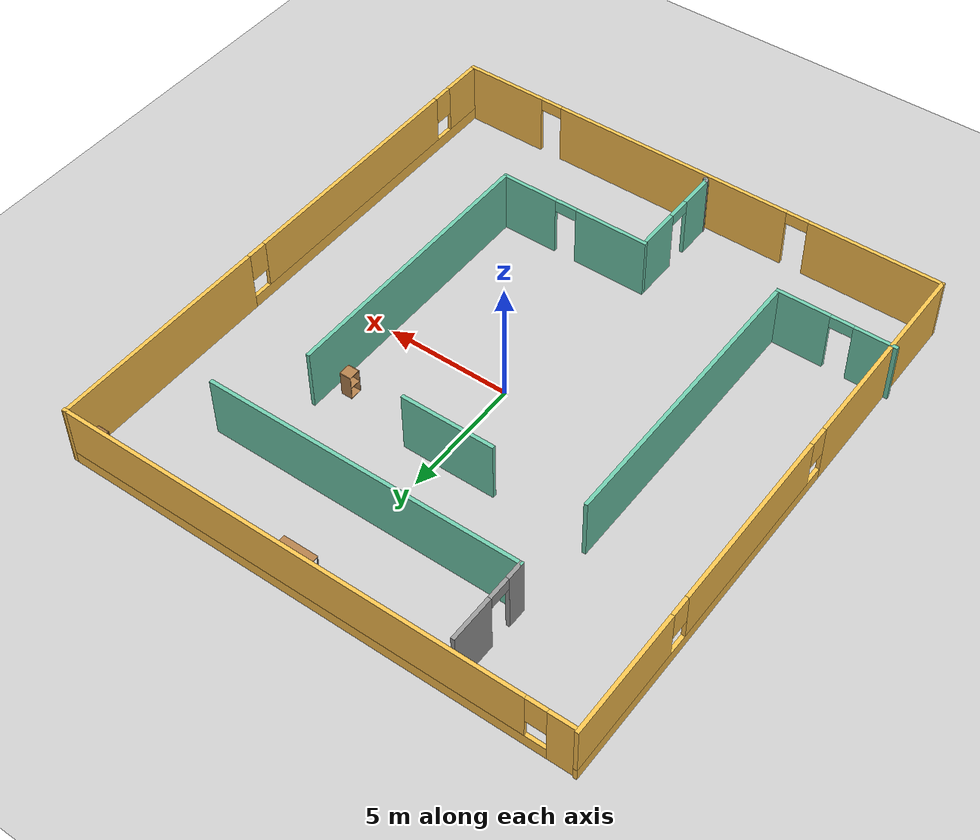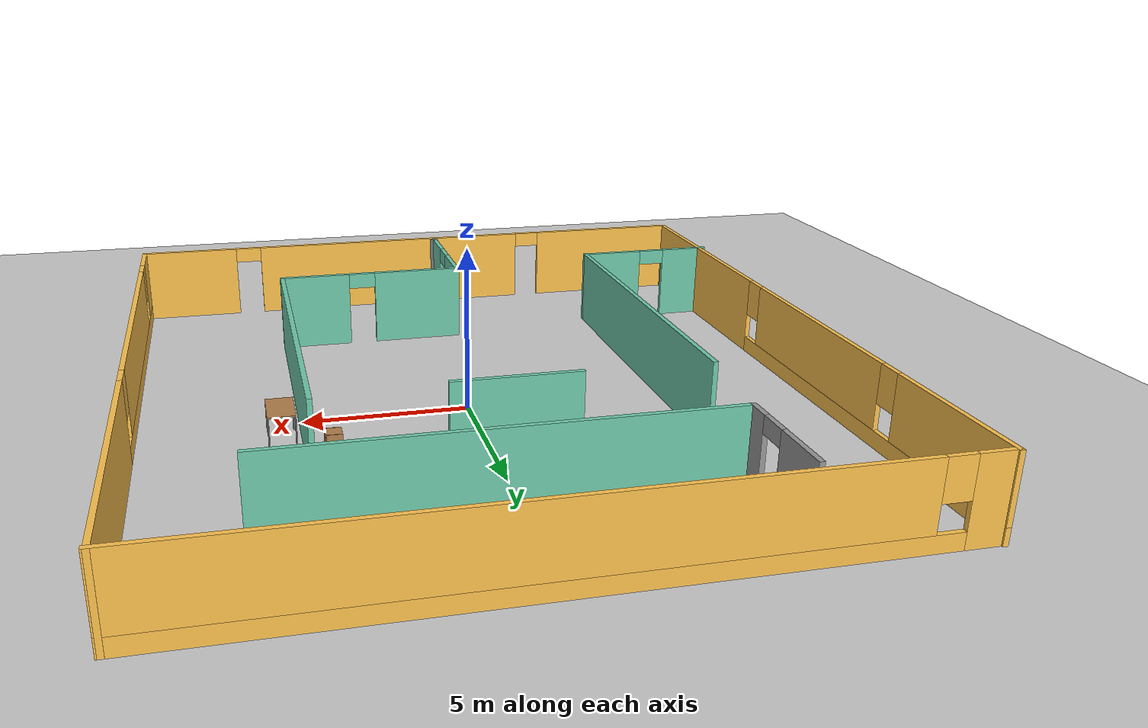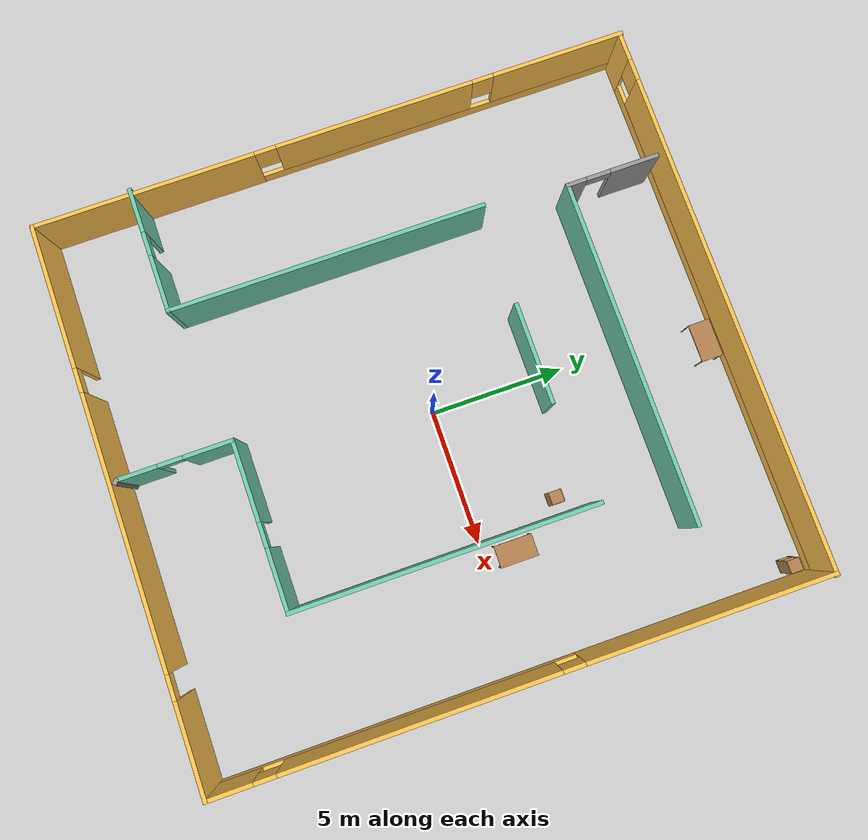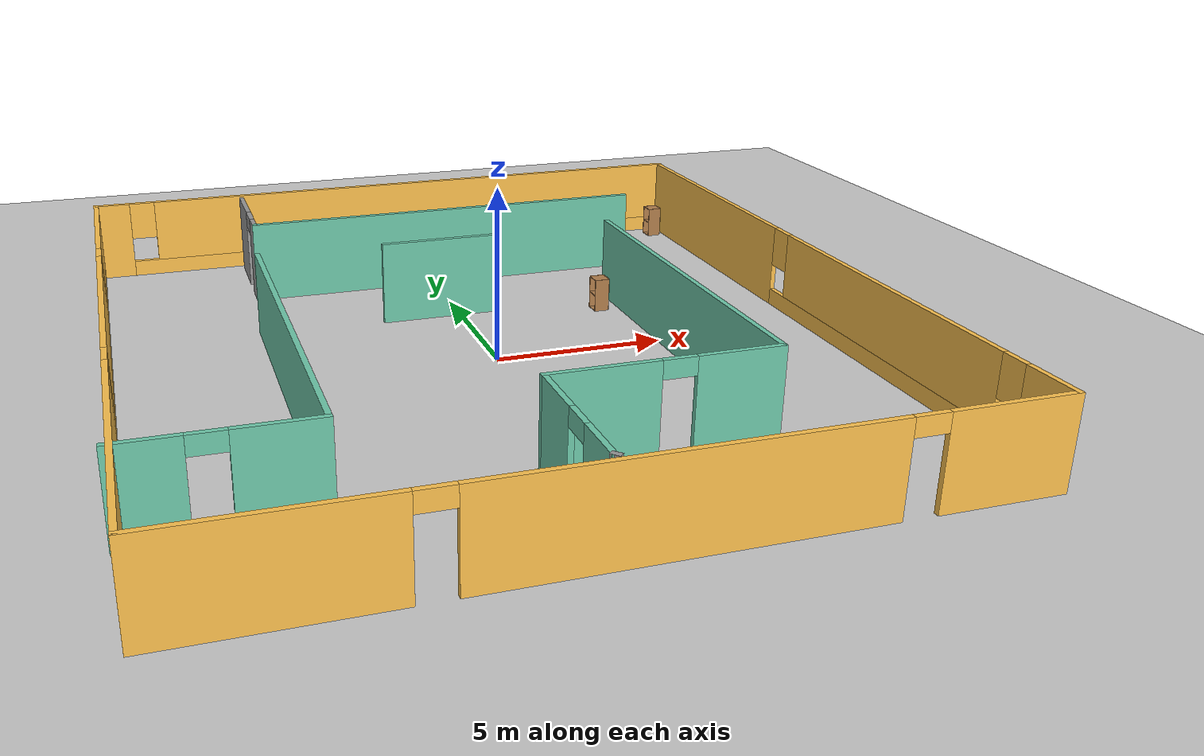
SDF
<sdf version="1.6">
 <world name="default">
  <model name="ground_plane">
   <static>1</static>
   <link name="link">
    <collision name="collision">
     <geometry><plane><normal>0 0 1</normal><size>100 100</size></plane></geometry>
     <surface><friction><ode><mu>100</mu><mu2>50</mu2></ode></friction></surface>
    </collision>
    <visual name="visual">
     <cast_shadows>0</cast_shadows>
     <geometry><plane><normal>0 0 1</normal><size>100 100</size></plane></geometry>
     <material>
      <script><uri>file://media/materials/scripts/gazebo.material</uri><name>Gazebo/Grey</name></script>
     </material>
    </visual>
   </link>
  </model>
  <model name="office_pnd">
   <pose>-0.445996 -0.179176 0 0 -0 0</pose>
   <link name="Wall_16">
    <pose>0.097541 11.0012 0 0 -0 0</pose>
    <visual name="Wall_16_Visual_0">
     <pose>-9.70034 0 1.25 0 -0 0</pose>
     <geometry><box><size>1.09931 0.15 2.5</size></box></geometry>
     <material>
      <script><uri>file://media/materials/scripts/gazebo.material</uri><name>Gazebo/Grey</name></script>
      <ambient>1 0.764706 0.305882 1</ambient>
     </material>
    </visual>
    <collision name="Wall_16_Collision_0">
     <geometry><box><size>1.09931 0.15 2.5</size></box></geometry>
     <pose>-9.70034 0 1.25 0 -0 0</pose>
    </collision>
    <visual name="Wall_16_Visual_1">
     <pose>0.549656 0 0.25 0 -0 0</pose>
     <geometry><box><size>19.4007 0.15 0.5</size></box></geometry>
     <material>
      <script><uri>file://media/materials/scripts/gazebo.material</uri><name>Gazebo/Grey</name></script>
      <ambient>1 0.764706 0.305882 1</ambient>
     </material>
    </visual>
    <collision name="Wall_16_Collision_1">
     <geometry><box><size>19.4007 0.15 0.5</size></box></geometry>
     <pose>0.549656 0 0.25 0 -0 0</pose>
    </collision>
    <visual name="Wall_16_Visual_2">
     <pose>0.949656 0 1.5 0 -0 0</pose>
     <geometry><box><size>18.6007 0.15 2</size></box></geometry>
     <material>
      <script><uri>file://media/materials/scripts/gazebo.material</uri><name>Gazebo/Grey</name></script>
      <ambient>1 0.764706 0.305882 1</ambient>
     </material>
    </visual>
    <collision name="Wall_16_Collision_2">
     <geometry><box><size>18.6007 0.15 2</size></box></geometry>
     <pose>0.949656 0 1.5 0 -0 0</pose>
    </collision>
    <visual name="Wall_16_Visual_3">
     <pose>-8.75069 0 1.9 0 -0 0</pose>
     <geometry><box><size>0.8 0.15 1.2</size></box></geometry>
     <material>
      <script><uri>file://media/materials/scripts/gazebo.material</uri><name>Gazebo/Grey</name></script>
      <ambient>1 0.764706 0.305882 1</ambient>
     </material>
    </visual>
    <collision name="Wall_16_Collision_3">
     <geometry><box><size>0.8 0.15 1.2</size></box></geometry>
     <pose>-8.75069 0 1.9 0 -0 0</pose>
    </collision>
   </link>
   <link name="Wall_17">
    <pose>10.2323 -0.024395 0 0 0 -1.5708</pose>
    <visual name="Wall_17_Visual_0">
     <pose>-6.60362 0 1.25 0 -0 0</pose>
     <geometry><box><size>8.99404 0.15 2.5</size></box></geometry>
     <material>
      <script><uri>file://media/materials/scripts/gazebo.material</uri><name>Gazebo/Grey</name></script>
      <ambient>1 0.764706 0.305882 1</ambient>
     </material>
    </visual>
    <collision name="Wall_17_Collision_0">
     <geometry><box><size>8.99404 0.15 2.5</size></box></geometry>
     <pose>-6.60362 0 1.25 0 -0 0</pose>
    </collision>
    <visual name="Wall_17_Visual_1">
     <pose>4.49702 0 0.25 0 -0 0</pose>
     <geometry><box><size>13.2072 0.15 0.5</size></box></geometry>
     <material>
      <script><uri>file://media/materials/scripts/gazebo.material</uri><name>Gazebo/Grey</name></script>
      <ambient>1 0.764706 0.305882 1</ambient>
     </material>
    </visual>
    <collision name="Wall_17_Collision_1">
     <geometry><box><size>13.2072 0.15 0.5</size></box></geometry>
     <pose>4.49702 0 0.25 0 -0 0</pose>
    </collision>
    <visual name="Wall_17_Visual_2">
     <pose>3.64361 0 1.5 0 -0 0</pose>
     <geometry><box><size>9.90042 0.15 2</size></box></geometry>
     <material>
      <script><uri>file://media/materials/scripts/gazebo.material</uri><name>Gazebo/Grey</name></script>
      <ambient>1 0.764706 0.305882 1</ambient>
     </material>
    </visual>
    <collision name="Wall_17_Collision_2">
     <geometry><box><size>9.90042 0.15 2</size></box></geometry>
     <pose>3.64361 0 1.5 0 -0 0</pose>
    </collision>
    <visual name="Wall_17_Visual_3">
     <pose>10.2472 0 1.5 0 -0 0</pose>
     <geometry><box><size>1.70682 0.15 2</size></box></geometry>
     <material>
      <script><uri>file://media/materials/scripts/gazebo.material</uri><name>Gazebo/Grey</name></script>
      <ambient>1 0.764706 0.305882 1</ambient>
     </material>
    </visual>
    <collision name="Wall_17_Collision_3">
     <geometry><box><size>1.70682 0.15 2</size></box></geometry>
     <pose>10.2472 0 1.5 0 -0 0</pose>
    </collision>
    <visual name="Wall_17_Visual_4">
     <pose>-1.7066 0 1.9 0 -0 0</pose>
     <geometry><box><size>0.8 0.15 1.2</size></box></geometry>
     <material>
      <script><uri>file://media/materials/scripts/gazebo.material</uri><name>Gazebo/Grey</name></script>
      <ambient>1 0.764706 0.305882 1</ambient>
     </material>
    </visual>
    <collision name="Wall_17_Collision_4">
     <geometry><box><size>0.8 0.15 1.2</size></box></geometry>
     <pose>-1.7066 0 1.9 0 -0 0</pose>
    </collision>
    <visual name="Wall_17_Visual_5">
     <pose>8.99382 0 1.9 0 -0 0</pose>
     <geometry><box><size>0.8 0.15 1.2</size></box></geometry>
     <material>
      <script><uri>file://media/materials/scripts/gazebo.material</uri><name>Gazebo/Grey</name></script>
      <ambient>1 0.764706 0.305882 1</ambient>
     </material>
    </visual>
    <collision name="Wall_17_Collision_5">
     <geometry><box><size>0.8 0.15 1.2</size></box></geometry>
     <pose>8.99382 0 1.9 0 -0 0</pose>
    </collision>
   </link>
   <link name="Wall_18">
    <pose>0.057314 -11.05 0 0 -0 3.14159</pose>
    <visual name="Wall_18_Visual_0">
     <pose>-8.55747 0 1.25 0 -0 0</pose>
     <geometry><box><size>3.38505 0.15 2.5</size></box></geometry>
     <material>
      <script><uri>file://media/materials/scripts/gazebo.material</uri><name>Gazebo/Grey</name></script>
      <ambient>1 0.764706 0.305882 1</ambient>
     </material>
    </visual>
    <collision name="Wall_18_Collision_0">
     <geometry><box><size>3.38505 0.15 2.5</size></box></geometry>
     <pose>-8.55747 0 1.25 0 -0 0</pose>
    </collision>
    <visual name="Wall_18_Visual_1">
     <pose>-1.00439 0 1.25 0 -0 0</pose>
     <geometry><box><size>9.9211 0.15 2.5</size></box></geometry>
     <material>
      <script><uri>file://media/materials/scripts/gazebo.material</uri><name>Gazebo/Grey</name></script>
      <ambient>1 0.764706 0.305882 1</ambient>
     </material>
    </visual>
    <collision name="Wall_18_Collision_1">
     <geometry><box><size>9.9211 0.15 2.5</size></box></geometry>
     <pose>-1.00439 0 1.25 0 -0 0</pose>
    </collision>
    <visual name="Wall_18_Visual_2">
     <pose>7.55308 0 1.25 0 -0 0</pose>
     <geometry><box><size>5.39384 0.15 2.5</size></box></geometry>
     <material>
      <script><uri>file://media/materials/scripts/gazebo.material</uri><name>Gazebo/Grey</name></script>
      <ambient>1 0.764706 0.305882 1</ambient>
     </material>
    </visual>
    <collision name="Wall_18_Collision_2">
     <geometry><box><size>5.39384 0.15 2.5</size></box></geometry>
     <pose>7.55308 0 1.25 0 -0 0</pose>
    </collision>
    <visual name="Wall_18_Visual_3">
     <pose>-6.41495 0 2.25 0 -0 0</pose>
     <geometry><box><size>0.9 0.15 0.5</size></box></geometry>
     <material>
      <script><uri>file://media/materials/scripts/gazebo.material</uri><name>Gazebo/Grey</name></script>
      <ambient>1 0.764706 0.305882 1</ambient>
     </material>
    </visual>
    <collision name="Wall_18_Collision_3">
     <geometry><box><size>0.9 0.15 0.5</size></box></geometry>
     <pose>-6.41495 0 2.25 0 -0 0</pose>
    </collision>
    <visual name="Wall_18_Visual_4">
     <pose>4.40616 0 2.25 0 -0 0</pose>
     <geometry><box><size>0.9 0.15 0.5</size></box></geometry>
     <material>
      <script><uri>file://media/materials/scripts/gazebo.material</uri><name>Gazebo/Grey</name></script>
      <ambient>1 0.764706 0.305882 1</ambient>
     </material>
    </visual>
    <collision name="Wall_18_Collision_4">
     <geometry><box><size>0.9 0.15 0.5</size></box></geometry>
     <pose>4.40616 0 2.25 0 -0 0</pose>
    </collision>
   </link>
   <link name="Wall_19">
    <pose>-10.1177 3.7e-05 0 0 -0 1.5708</pose>
    <visual name="Wall_19_Visual_0">
     <pose>-6.99312 0 1.25 0 -0 0</pose>
     <geometry><box><size>8.26377 0.15 2.5</size></box></geometry>
     <material>
      <script><uri>file://media/materials/scripts/gazebo.material</uri><name>Gazebo/Grey</name></script>
      <ambient>1 0.764706 0.305882 1</ambient>
     </material>
    </visual>
    <collision name="Wall_19_Collision_0">
     <geometry><box><size>8.26377 0.15 2.5</size></box></geometry>
     <pose>-6.99312 0 1.25 0 -0 0</pose>
    </collision>
    <visual name="Wall_19_Visual_1">
     <pose>4.13188 0 0.25 0 -0 0</pose>
     <geometry><box><size>13.9862 0.15 0.5</size></box></geometry>
     <material>
      <script><uri>file://media/materials/scripts/gazebo.material</uri><name>Gazebo/Grey</name></script>
      <ambient>1 0.764706 0.305882 1</ambient>
     </material>
    </visual>
    <collision name="Wall_19_Collision_1">
     <geometry><box><size>13.9862 0.15 0.5</size></box></geometry>
     <pose>4.13188 0 0.25 0 -0 0</pose>
    </collision>
    <visual name="Wall_19_Visual_2">
     <pose>1.64194 0 1.5 0 -0 0</pose>
     <geometry><box><size>7.40634 0.15 2</size></box></geometry>
     <material>
      <script><uri>file://media/materials/scripts/gazebo.material</uri><name>Gazebo/Grey</name></script>
      <ambient>1 0.764706 0.305882 1</ambient>
     </material>
    </visual>
    <collision name="Wall_19_Collision_2">
     <geometry><box><size>7.40634 0.15 2</size></box></geometry>
     <pose>1.64194 0 1.5 0 -0 0</pose>
    </collision>
    <visual name="Wall_19_Visual_3">
     <pose>8.63505 0 1.5 0 -0 0</pose>
     <geometry><box><size>4.97989 0.15 2</size></box></geometry>
     <material>
      <script><uri>file://media/materials/scripts/gazebo.material</uri><name>Gazebo/Grey</name></script>
      <ambient>1 0.764706 0.305882 1</ambient>
     </material>
    </visual>
    <collision name="Wall_19_Collision_3">
     <geometry><box><size>4.97989 0.15 2</size></box></geometry>
     <pose>8.63505 0 1.5 0 -0 0</pose>
    </collision>
    <visual name="Wall_19_Visual_4">
     <pose>-2.46123 0 1.9 0 -0 0</pose>
     <geometry><box><size>0.8 0.15 1.2</size></box></geometry>
     <material>
      <script><uri>file://media/materials/scripts/gazebo.material</uri><name>Gazebo/Grey</name></script>
      <ambient>1 0.764706 0.305882 1</ambient>
     </material>
    </visual>
    <collision name="Wall_19_Collision_4">
     <geometry><box><size>0.8 0.15 1.2</size></box></geometry>
     <pose>-2.46123 0 1.9 0 -0 0</pose>
    </collision>
    <visual name="Wall_19_Visual_5">
     <pose>5.74511 0 1.9 0 -0 0</pose>
     <geometry><box><size>0.8 0.15 1.2</size></box></geometry>
     <material>
      <script><uri>file://media/materials/scripts/gazebo.material</uri><name>Gazebo/Grey</name></script>
      <ambient>1 0.764706 0.305882 1</ambient>
     </material>
    </visual>
    <collision name="Wall_19_Collision_5">
     <geometry><box><size>0.8 0.15 1.2</size></box></geometry>
     <pose>5.74511 0 1.9 0 -0 0</pose>
    </collision>
   </link>
   <link name="Wall_21">
    <collision name="Wall_21_Collision">
     <geometry><box><size>11.75 0.15 2.5</size></box></geometry>
     <pose>0 0 1.25 0 -0 0</pose>
    </collision>
    <visual name="Wall_21_Visual">
     <pose>0 0 1.25 0 -0 0</pose>
     <geometry><box><size>11.75 0.15 2.5</size></box></geometry>
     <material>
      <script><uri>file://media/materials/scripts/gazebo.material</uri><name>Gazebo/Grey</name></script>
      <ambient>0.435294 0.796078 0.67451 1</ambient>
     </material>
    </visual>
    <pose>-5.67254 -1.62415 0 0 0 -1.5708</pose>
   </link>
   <link name="Wall_22">
    <pose>-7.97254 -7.42415 0 0 -0 3.14159</pose>
    <visual name="Wall_22_Visual_0">
     <pose>-1.29345 0 1.25 0 -0 0</pose>
     <geometry><box><size>2.16311 0.15 2.5</size></box></geometry>
     <material>
      <script><uri>file://media/materials/scripts/gazebo.material</uri><name>Gazebo/Grey</name></script>
      <ambient>0.435294 0.796078 0.67451 1</ambient>
     </material>
    </visual>
    <collision name="Wall_22_Collision_0">
     <geometry><box><size>2.16311 0.15 2.5</size></box></geometry>
     <pose>-1.29345 0 1.25 0 -0 0</pose>
    </collision>
    <visual name="Wall_22_Visual_1">
     <pose>1.53155 0 1.25 0 -0 0</pose>
     <geometry><box><size>1.68689 0.15 2.5</size></box></geometry>
     <material>
      <script><uri>file://media/materials/scripts/gazebo.material</uri><name>Gazebo/Grey</name></script>
      <ambient>0.435294 0.796078 0.67451 1</ambient>
     </material>
    </visual>
    <collision name="Wall_22_Collision_1">
     <geometry><box><size>1.68689 0.15 2.5</size></box></geometry>
     <pose>1.53155 0 1.25 0 -0 0</pose>
    </collision>
    <visual name="Wall_22_Visual_2">
     <pose>0.238108 0 2.25 0 -0 0</pose>
     <geometry><box><size>0.9 0.15 0.5</size></box></geometry>
     <material>
      <script><uri>file://media/materials/scripts/gazebo.material</uri><name>Gazebo/Grey</name></script>
      <ambient>0.435294 0.796078 0.67451 1</ambient>
     </material>
    </visual>
    <collision name="Wall_22_Collision_2">
     <geometry><box><size>0.9 0.15 0.5</size></box></geometry>
     <pose>0.238108 0 2.25 0 -0 0</pose>
    </collision>
   </link>
   <link name="Wall_24">
    <pose>-5.36664 8.9248 0 0 0 -1.5708</pose>
    <visual name="Wall_24_Visual_0">
     <pose>-0.837668 0 1.25 0 -0 0</pose>
     <geometry><box><size>1.82466 0.15 2.5</size></box></geometry>
     <material>
      <script><uri>file://media/materials/scripts/gazebo.material</uri><name>Gazebo/Grey</name></script>
      <ambient>1 1 1 1</ambient>
     </material>
    </visual>
    <collision name="Wall_24_Collision_0">
     <geometry><box><size>1.82466 0.15 2.5</size></box></geometry>
     <pose>-0.837668 0 1.25 0 -0 0</pose>
    </collision>
    <visual name="Wall_24_Visual_1">
     <pose>1.36233 0 1.25 0 -0 0</pose>
     <geometry><box><size>0.775335 0.15 2.5</size></box></geometry>
     <material>
      <script><uri>file://media/materials/scripts/gazebo.material</uri><name>Gazebo/Grey</name></script>
      <ambient>1 1 1 1</ambient>
     </material>
    </visual>
    <collision name="Wall_24_Collision_1">
     <geometry><box><size>0.775335 0.15 2.5</size></box></geometry>
     <pose>1.36233 0 1.25 0 -0 0</pose>
    </collision>
    <visual name="Wall_24_Visual_2">
     <pose>0.524665 0 2.25 0 -0 0</pose>
     <geometry><box><size>0.9 0.15 0.5</size></box></geometry>
     <material>
      <script><uri>file://media/materials/scripts/gazebo.material</uri><name>Gazebo/Grey</name></script>
      <ambient>1 1 1 1</ambient>
     </material>
    </visual>
    <collision name="Wall_24_Collision_2">
     <geometry><box><size>0.9 0.15 0.5</size></box></geometry>
     <pose>0.524665 0 2.25 0 -0 0</pose>
    </collision>
   </link>
   <link name="Wall_25">
    <collision name="Wall_25_Collision">
     <geometry><box><size>12.75 0.15 2.5</size></box></geometry>
     <pose>0 0 1.25 0 -0 0</pose>
    </collision>
    <visual name="Wall_25_Visual">
     <pose>0 0 1.25 0 -0 0</pose>
     <geometry><box><size>12.75 0.15 2.5</size></box></geometry>
     <material>
      <script><uri>file://media/materials/scripts/gazebo.material</uri><name>Gazebo/Grey</name></script>
      <ambient>0.435294 0.796078 0.67451 1</ambient>
     </material>
    </visual>
    <pose>0.933361 7.2498 0 0 -0 0</pose>
   </link>
   <link name="Wall_28">
    <collision name="Wall_28_Collision">
     <geometry><box><size>11.25 0.15 2.5</size></box></geometry>
     <pose>0 0 1.25 0 -0 0</pose>
    </collision>
    <visual name="Wall_28_Visual">
     <pose>0 0 1.25 0 -0 0</pose>
     <geometry><box><size>11.25 0.15 2.5</size></box></geometry>
     <material>
      <script><uri>file://media/materials/scripts/gazebo.material</uri><name>Gazebo/Grey</name></script>
      <ambient>0.435294 0.796078 0.67451 1</ambient>
     </material>
    </visual>
    <pose>5.4623 -1.12943 0 0 0 -1.5708</pose>
   </link>
   <link name="Wall_29">
    <pose>2.4123 -6.67943 0 0 -0 3.14159</pose>
    <visual name="Wall_29_Visual_0">
     <pose>-1.94692 0 1.25 0 -0 0</pose>
     <geometry><box><size>2.35617 0.15 2.5</size></box></geometry>
     <material>
      <script><uri>file://media/materials/scripts/gazebo.material</uri><name>Gazebo/Grey</name></script>
      <ambient>0.435294 0.796078 0.67451 1</ambient>
     </material>
    </visual>
    <collision name="Wall_29_Collision_0">
     <geometry><box><size>2.35617 0.15 2.5</size></box></geometry>
     <pose>-1.94692 0 1.25 0 -0 0</pose>
    </collision>
    <visual name="Wall_29_Visual_1">
     <pose>1.62808 0 1.25 0 -0 0</pose>
     <geometry><box><size>2.99383 0.15 2.5</size></box></geometry>
     <material>
      <script><uri>file://media/materials/scripts/gazebo.material</uri><name>Gazebo/Grey</name></script>
      <ambient>0.435294 0.796078 0.67451 1</ambient>
     </material>
    </visual>
    <collision name="Wall_29_Collision_1">
     <geometry><box><size>2.99383 0.15 2.5</size></box></geometry>
     <pose>1.62808 0 1.25 0 -0 0</pose>
    </collision>
    <visual name="Wall_29_Visual_2">
     <pose>-0.318833 0 2.25 0 -0 0</pose>
     <geometry><box><size>0.9 0.15 0.5</size></box></geometry>
     <material>
      <script><uri>file://media/materials/scripts/gazebo.material</uri><name>Gazebo/Grey</name></script>
      <ambient>0.435294 0.796078 0.67451 1</ambient>
     </material>
    </visual>
    <collision name="Wall_29_Collision_2">
     <geometry><box><size>0.9 0.15 0.5</size></box></geometry>
     <pose>-0.318833 0 2.25 0 -0 0</pose>
    </collision>
   </link>
   <link name="Wall_30">
    <pose>-0.637698 -8.72943 0 0 0 -1.5708</pose>
    <visual name="Wall_30_Visual_0">
     <pose>-1.20345 0 1.25 0 -0 0</pose>
     <geometry><box><size>1.84311 0.15 2.5</size></box></geometry>
     <material>
      <script><uri>file://media/materials/scripts/gazebo.material</uri><name>Gazebo/Grey</name></script>
      <ambient>0.435294 0.796078 0.67451 1</ambient>
     </material>
    </visual>
    <collision name="Wall_30_Collision_0">
     <geometry><box><size>1.84311 0.15 2.5</size></box></geometry>
     <pose>-1.20345 0 1.25 0 -0 0</pose>
    </collision>
    <visual name="Wall_30_Visual_1">
     <pose>1.37156 0 1.25 0 -0 0</pose>
     <geometry><box><size>1.50689 0.15 2.5</size></box></geometry>
     <material>
      <script><uri>file://media/materials/scripts/gazebo.material</uri><name>Gazebo/Grey</name></script>
      <ambient>0.435294 0.796078 0.67451 1</ambient>
     </material>
    </visual>
    <collision name="Wall_30_Collision_1">
     <geometry><box><size>1.50689 0.15 2.5</size></box></geometry>
     <pose>1.37156 0 1.25 0 -0 0</pose>
    </collision>
    <visual name="Wall_30_Visual_2">
     <pose>0.168111 0 2.25 0 -0 0</pose>
     <geometry><box><size>0.9 0.15 0.5</size></box></geometry>
     <material>
      <script><uri>file://media/materials/scripts/gazebo.material</uri><name>Gazebo/Grey</name></script>
      <ambient>0.435294 0.796078 0.67451 1</ambient>
     </material>
    </visual>
    <collision name="Wall_30_Collision_2">
     <geometry><box><size>0.9 0.15 0.5</size></box></geometry>
     <pose>0.168111 0 2.25 0 -0 0</pose>
    </collision>
   </link>
   <link name="Wall_31">
    <collision name="Wall_31_Collision">
     <geometry><box><size>0.25 0.15 2.5</size></box></geometry>
     <pose>0 0 1.25 0 -0 0</pose>
    </collision>
    <visual name="Wall_31_Visual">
     <pose>0 0 1.25 0 -0 0</pose>
     <geometry><box><size>0.25 0.15 2.5</size></box></geometry>
     <material>
      <script><uri>file://media/materials/scripts/gazebo.material</uri><name>Gazebo/Grey</name></script>
      <ambient>1 1 1 1</ambient>
     </material>
    </visual>
    <pose>-0.602343 -10.8148 0 0 0 -0.785398</pose>
   </link>
   <link name="Wall_40">
    <collision name="Wall_40_Collision">
     <geometry><box><size>3.75 0.15 2.5</size></box></geometry>
     <pose>0 0 1.25 0 -0 0</pose>
    </collision>
    <visual name="Wall_40_Visual">
     <pose>0 0 1.25 0 -0 0</pose>
     <geometry><box><size>3.75 0.15 2.5</size></box></geometry>
     <material>
      <script><uri>file://media/materials/scripts/gazebo.material</uri><name>Gazebo/Grey</name></script>
      <ambient>0.435294 0.796078 0.67451 1</ambient>
     </material>
    </visual>
    <pose>-0.094987 4.0556 0 0 -0 0</pose>
   </link>
   <static>1</static>
  </model>
  <model name="table_clone_4">
   <static>0</static>
   <link name="link">
    <collision name="surface">
     <pose>0 0 1 0 -0 0</pose>
     <geometry><box><size>1.5 0.8 0.03</size></box></geometry>
     <surface><friction><ode><mu>0.6</mu><mu2>0.6</mu2></ode></friction></surface>
    </collision>
    <visual name="visual1">
     <pose>0 0 1 0 -0 0</pose>
     <geometry><box><size>1.4 0.8 0.04</size></box></geometry>
     <material>
      <script><uri>file://media/materials/scripts/gazebo.material</uri><name>Gazebo/Wood</name></script>
     </material>
    </visual>
    <collision name="front_left_leg">
     <pose>0.68 0.38 0.5 0 -0 0</pose>
     <geometry><cylinder><radius>0.02</radius><length>1</length></cylinder></geometry>
    </collision>
    <visual name="front_left_leg">
     <pose>0.68 0.38 0.5 0 -0 0</pose>
     <geometry><cylinder><radius>0.02</radius><length>1</length></cylinder></geometry>
     <material>
      <script><uri>file://media/materials/scripts/gazebo.material</uri><name>Gazebo/Grey</name></script>
     </material>
    </visual>
    <collision name="front_right_leg">
     <pose>0.68 -0.38 0.5 0 -0 0</pose>
     <geometry><cylinder><radius>0.02</radius><length>1</length></cylinder></geometry>
    </collision>
    <visual name="front_right_leg">
     <pose>0.68 -0.38 0.5 0 -0 0</pose>
     <geometry><cylinder><radius>0.02</radius><length>1</length></cylinder></geometry>
     <material>
      <script><uri>file://media/materials/scripts/gazebo.material</uri><name>Gazebo/Grey</name></script>
     </material>
    </visual>
    <collision name="back_right_leg">
     <pose>-0.68 -0.38 0.5 0 -0 0</pose>
     <geometry><cylinder><radius>0.02</radius><length>1</length></cylinder></geometry>
    </collision>
    <visual name="back_right_leg">
     <pose>-0.68 -0.38 0.5 0 -0 0</pose>
     <geometry><cylinder><radius>0.02</radius><length>1</length></cylinder></geometry>
     <material>
      <script><uri>file://media/materials/scripts/gazebo.material</uri><name>Gazebo/Grey</name></script>
     </material>
    </visual>
    <collision name="back_left_leg">
     <pose>-0.68 0.38 0.5 0 -0 0</pose>
     <geometry><cylinder><radius>0.02</radius><length>1</length></cylinder></geometry>
    </collision>
    <visual name="back_left_leg">
     <pose>-0.68 0.38 0.5 0 -0 0</pose>
     <geometry><cylinder><radius>0.02</radius><length>1</length></cylinder></geometry>
     <material>
      <script><uri>file://media/materials/scripts/gazebo.material</uri><name>Gazebo/Grey</name></script>
     </material>
    </visual>
    <inertial>
     <inertia><ixx>1</ixx><ixy>0</ixy><ixz>0</ixz><iyy>1</iyy><iyz>0</iyz><izz>1</izz></inertia>
     <mass>1</mass>
    </inertial>
   </link>
   <pose>0.83433 10.1227 -8e-06 1e-06 -0 0</pose>
  </model>
  <model name="table_clone_7_clone">
   <static>0</static>
   <link name="link">
    <collision name="surface">
     <pose>0 0 1 0 -0 0</pose>
     <geometry><box><size>1.5 0.8 0.03</size></box></geometry>
     <surface><friction><ode><mu>0.6</mu><mu2>0.6</mu2></ode></friction></surface>
    </collision>
    <visual name="visual1">
     <pose>0 0 1 0 -0 0</pose>
     <geometry><box><size>1.4 0.8 0.04</size></box></geometry>
     <material>
      <script><uri>file://media/materials/scripts/gazebo.material</uri><name>Gazebo/Wood</name></script>
     </material>
    </visual>
    <collision name="front_left_leg">
     <pose>0.68 0.38 0.5 0 -0 0</pose>
     <geometry><cylinder><radius>0.02</radius><length>1</length></cylinder></geometry>
    </collision>
    <visual name="front_left_leg">
     <pose>0.68 0.38 0.5 0 -0 0</pose>
     <geometry><cylinder><radius>0.02</radius><length>1</length></cylinder></geometry>
     <material>
      <script><uri>file://media/materials/scripts/gazebo.material</uri><name>Gazebo/Grey</name></script>
     </material>
    </visual>
    <collision name="front_right_leg">
     <pose>0.68 -0.38 0.5 0 -0 0</pose>
     <geometry><cylinder><radius>0.02</radius><length>1</length></cylinder></geometry>
    </collision>
    <visual name="front_right_leg">
     <pose>0.68 -0.38 0.5 0 -0 0</pose>
     <geometry><cylinder><radius>0.02</radius><length>1</length></cylinder></geometry>
     <material>
      <script><uri>file://media/materials/scripts/gazebo.material</uri><name>Gazebo/Grey</name></script>
     </material>
    </visual>
    <collision name="back_right_leg">
     <pose>-0.68 -0.38 0.5 0 -0 0</pose>
     <geometry><cylinder><radius>0.02</radius><length>1</length></cylinder></geometry>
    </collision>
    <visual name="back_right_leg">
     <pose>-0.68 -0.38 0.5 0 -0 0</pose>
     <geometry><cylinder><radius>0.02</radius><length>1</length></cylinder></geometry>
     <material>
      <script><uri>file://media/materials/scripts/gazebo.material</uri><name>Gazebo/Grey</name></script>
     </material>
    </visual>
    <collision name="back_left_leg">
     <pose>-0.68 0.38 0.5 0 -0 0</pose>
     <geometry><cylinder><radius>0.02</radius><length>1</length></cylinder></geometry>
    </collision>
    <visual name="back_left_leg">
     <pose>-0.68 0.38 0.5 0 -0 0</pose>
     <geometry><cylinder><radius>0.02</radius><length>1</length></cylinder></geometry>
     <material>
      <script><uri>file://media/materials/scripts/gazebo.material</uri><name>Gazebo/Grey</name></script>
     </material>
    </visual>
    <inertial>
     <inertia><ixx>1</ixx><ixy>0</ixy><ixz>0</ixz><iyy>1</iyy><iyz>0</iyz><izz>1</izz></inertia>
     <mass>1</mass>
    </inertial>
   </link>
   <pose>5.64417 1.10476 -1e-06 -1e-06 1e-06 -1.5708</pose>
  </model>
  <model name="cabinet_clone_clone">
   <static>1</static>
   <link name="cabinet_bottom_plate">
    <inertial>
     <pose>0 0 -1 0 -0 0</pose>
     <inertia><ixx>2.05</ixx><ixy>0</ixy><ixz>0</ixz><iyy>2.05</iyy><iyz>0</iyz><izz>2.05</izz></inertia>
     <mass>25</mass>
    </inertial>
    <collision name="cabinet_bottom_plate_geom">
     <pose>0 0 0.01 0 -0 0</pose>
     <geometry><box><size>0.45 0.45 0.02</size></box></geometry>
    </collision>
    <visual name="cabinet_bottom_plate_geom_visual">
     <pose>0 0 0.01 0 -0 0</pose>
     <geometry><box><size>0.45 0.45 0.02</size></box></geometry>
     <material>
      <script><uri>file://media/materials/scripts/gazebo.material</uri><name>Gazebo/Wood</name></script>
     </material>
    </visual>
    <collision name="cabinet_bottom_plate_geom_cabinet_back_plate">
     <pose>0.235 0 0.51 0 -0 0</pose>
     <geometry><box><size>0.02 0.45 1.02</size></box></geometry>
    </collision>
    <visual name="cabinet_bottom_plate_geom_cabinet_back_plate_visual">
     <pose>0.235 0 0.51 0 -0 0</pose>
     <geometry><box><size>0.02 0.45 1.02</size></box></geometry>
     <material>
      <script><uri>file://media/materials/scripts/gazebo.material</uri><name>Gazebo/Wood</name></script>
     </material>
    </visual>
    <collision name="cabinet_bottom_plate_geom_cabinet_left_plate">
     <pose>0 0.235 0.51 0 -0 0</pose>
     <geometry><box><size>0.45 0.02 1.02</size></box></geometry>
    </collision>
    <visual name="cabinet_bottom_plate_geom_cabinet_left_plate_visual">
     <pose>0 0.235 0.51 0 -0 0</pose>
     <geometry><box><size>0.45 0.02 1.02</size></box></geometry>
     <material>
      <script><uri>file://media/materials/scripts/gazebo.material</uri><name>Gazebo/Wood</name></script>
     </material>
    </visual>
    <collision name="cabinet_bottom_plate_geom_cabinet_middle_plate">
     <pose>0 0 0.51 0 -0 0</pose>
     <geometry><box><size>0.45 0.45 0.02</size></box></geometry>
    </collision>
    <visual name="cabinet_bottom_plate_geom_cabinet_middle_plate_visual">
     <pose>0 0 0.51 0 -0 0</pose>
     <geometry><box><size>0.45 0.45 0.02</size></box></geometry>
     <material>
      <script><uri>file://media/materials/scripts/gazebo.material</uri><name>Gazebo/Wood</name></script>
     </material>
    </visual>
    <collision name="cabinet_bottom_plate_geom_cabinet_right_plate">
     <pose>0 -0.235 0.51 0 -0 0</pose>
     <geometry><box><size>0.45 0.02 1.02</size></box></geometry>
    </collision>
    <visual name="cabinet_bottom_plate_geom_cabinet_right_plate_visual">
     <pose>0 -0.235 0.51 0 -0 0</pose>
     <geometry><box><size>0.45 0.02 1.02</size></box></geometry>
     <material>
      <script><uri>file://media/materials/scripts/gazebo.material</uri><name>Gazebo/Wood</name></script>
     </material>
    </visual>
    <collision name="cabinet_bottom_plate_geom_cabinet_top_plate">
     <pose>0 0 1.01 0 -0 0</pose>
     <geometry><box><size>0.45 0.45 0.02</size></box></geometry>
    </collision>
    <visual name="cabinet_bottom_plate_geom_cabinet_top_plate_visual">
     <pose>0 0 1.01 0 -0 0</pose>
     <geometry><box><size>0.45 0.45 0.02</size></box></geometry>
     <material>
      <script><uri>file://media/materials/scripts/gazebo.material</uri><name>Gazebo/Wood</name></script>
     </material>
    </visual>
   </link>
   <pose>9.31281 10.1241 0 0 -0 0</pose>
  </model>
  <model name="cabinet_clone_clone_0">
   <static>1</static>
   <link name="cabinet_bottom_plate">
    <inertial>
     <pose>0 0 -1 0 -0 0</pose>
     <inertia><ixx>2.05</ixx><ixy>0</ixy><ixz>0</ixz><iyy>2.05</iyy><iyz>0</iyz><izz>2.05</izz></inertia>
     <mass>25</mass>
    </inertial>
    <collision name="cabinet_bottom_plate_geom">
     <pose>0 0 0.01 0 -0 0</pose>
     <geometry><box><size>0.45 0.45 0.02</size></box></geometry>
    </collision>
    <visual name="cabinet_bottom_plate_geom_visual">
     <pose>0 0 0.01 0 -0 0</pose>
     <geometry><box><size>0.45 0.45 0.02</size></box></geometry>
     <material>
      <script><uri>file://media/materials/scripts/gazebo.material</uri><name>Gazebo/Wood</name></script>
     </material>
    </visual>
    <collision name="cabinet_bottom_plate_geom_cabinet_back_plate">
     <pose>0.235 0 0.51 0 -0 0</pose>
     <geometry><box><size>0.02 0.45 1.02</size></box></geometry>
    </collision>
    <visual name="cabinet_bottom_plate_geom_cabinet_back_plate_visual">
     <pose>0.235 0 0.51 0 -0 0</pose>
     <geometry><box><size>0.02 0.45 1.02</size></box></geometry>
     <material>
      <script><uri>file://media/materials/scripts/gazebo.material</uri><name>Gazebo/Wood</name></script>
     </material>
    </visual>
    <collision name="cabinet_bottom_plate_geom_cabinet_left_plate">
     <pose>0 0.235 0.51 0 -0 0</pose>
     <geometry><box><size>0.45 0.02 1.02</size></box></geometry>
    </collision>
    <visual name="cabinet_bottom_plate_geom_cabinet_left_plate_visual">
     <pose>0 0.235 0.51 0 -0 0</pose>
     <geometry><box><size>0.45 0.02 1.02</size></box></geometry>
     <material>
      <script><uri>file://media/materials/scripts/gazebo.material</uri><name>Gazebo/Wood</name></script>
     </material>
    </visual>
    <collision name="cabinet_bottom_plate_geom_cabinet_middle_plate">
     <pose>0 0 0.51 0 -0 0</pose>
     <geometry><box><size>0.45 0.45 0.02</size></box></geometry>
    </collision>
    <visual name="cabinet_bottom_plate_geom_cabinet_middle_plate_visual">
     <pose>0 0 0.51 0 -0 0</pose>
     <geometry><box><size>0.45 0.45 0.02</size></box></geometry>
     <material>
      <script><uri>file://media/materials/scripts/gazebo.material</uri><name>Gazebo/Wood</name></script>
     </material>
    </visual>
    <collision name="cabinet_bottom_plate_geom_cabinet_right_plate">
     <pose>0 -0.235 0.51 0 -0 0</pose>
     <geometry><box><size>0.45 0.02 1.02</size></box></geometry>
    </collision>
    <visual name="cabinet_bottom_plate_geom_cabinet_right_plate_visual">
     <pose>0 -0.235 0.51 0 -0 0</pose>
     <geometry><box><size>0.45 0.02 1.02</size></box></geometry>
     <material>
      <script><uri>file://media/materials/scripts/gazebo.material</uri><name>Gazebo/Wood</name></script>
     </material>
    </visual>
    <collision name="cabinet_bottom_plate_geom_cabinet_top_plate">
     <pose>0 0 1.01 0 -0 0</pose>
     <geometry><box><size>0.45 0.45 0.02</size></box></geometry>
    </collision>
    <visual name="cabinet_bottom_plate_geom_cabinet_top_plate_visual">
     <pose>0 0 1.01 0 -0 0</pose>
     <geometry><box><size>0.45 0.45 0.02</size></box></geometry>
     <material>
      <script><uri>file://media/materials/scripts/gazebo.material</uri><name>Gazebo/Wood</name></script>
     </material>
    </visual>
   </link>
   <pose>4.34052 3.08784 0 0 -0 0</pose>
  </model>
 </world>
</sdf>
